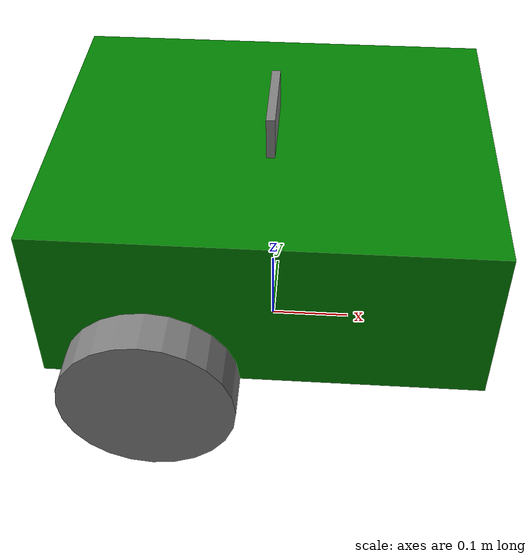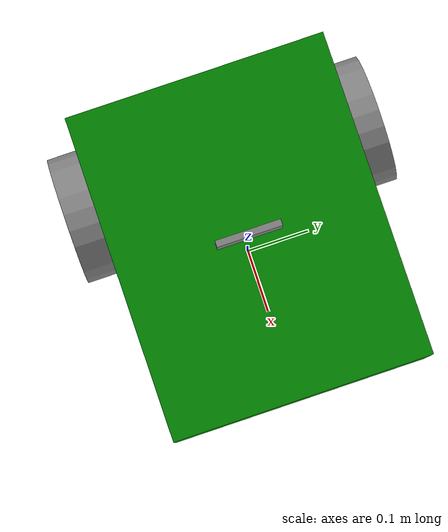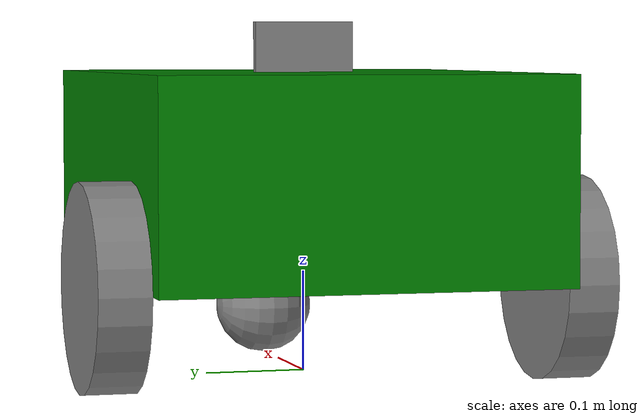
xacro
<?xml version="1.0"?>
<robot name="my_robot" xmlns:xacro="https://www.ros.org/wiki/xacro">

    <xacro:include filename="common_properties.xacro"/>
    <xacro:include filename="mobile_base.xacro"/>
    <xacro:include filename="mobile_base_gazebo.xacro"/>
    <xacro:include filename="camera.xacro"/>

</robot>

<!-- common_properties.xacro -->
<robot xmlns:xacro="https://www.ros.org/wiki/xacro">

    <material name="green">
        <color rgba="0 0.5 0 1"/>
    </material>

    <material name="grey">
        <color rgba="0.5 0.5 0.5 1"/>
    </material>

    <xacro:macro name="box_inertia" params="m x y z o_xyz o_rpy">
        <inertial>
            <mass value="${m}"/>
            <origin xyz="${o_xyz}" rpy="${o_rpy}"/>
            <inertia ixx="${(m/12.0)*(y*y+z*z)}" ixy="0" ixz="0"
                iyy="${(m/12.0)*(x*x+z*z)}" iyz="0"
                izz="${(m/12.0)*(y*y+x*x)}"/>
        </inertial>
    </xacro:macro>

    <xacro:macro name="cylinder_inertia" params="m r l o_xyz o_rpy">
        <inertial>
            <mass value="${m}"/>
            <origin xyz="${o_xyz}" rpy="${o_rpy}"/>
            <inertia ixx="${(m/12.0)*(3*r*r+l*l)}" ixy="0" ixz="0"
                iyy="${(m/12.0)*(3*r*r+l*l)}" iyz="0"
                izz="${(m/2.0)*(r*r)}"/>
        </inertial>
    </xacro:macro>

    <xacro:macro name="sphere_inertia" params="m r o_xyz o_rpy">
        <inertial>
            <mass value="${m}"/>
            <origin xyz="${o_xyz}" rpy="${o_rpy}"/>
            <inertia ixx="${(2.0/5.0)*m*(r*r)}" ixy="0" ixz="0"
                iyy="${(2.0/5.0)*m*(r*r)}" iyz="0"
                izz="${(2.0/5.0)*m*(r*r)}"/>
        </inertial>
    </xacro:macro>

</robot>

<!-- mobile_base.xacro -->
<robot xmlns:xacro="https://www.ros.org/wiki/xacro">
    <xacro:property name="base_length" value="0.5"/>
    <xacro:property name="base_width" value="0.4"/>
    <xacro:property name="base_height" value="0.2"/>
    <xacro:property name="wheel_radius" value="0.1"/>
    <xacro:property name="wheel_length" value="0.05"/>

    <xacro:macro name="wheel_link" params="prefix">
        <link name="${prefix}_wheel_link">
            <visual>
                <geometry>
                    <cylinder radius="${wheel_radius}" length="${wheel_length}"/>
                </geometry>
                <origin xyz="0 0 0" rpy="${pi/2.0} 0 0"/>
                <material name="grey"/>
            </visual>
            <collision>
                <geometry>
                    <cylinder radius="${wheel_radius}" length="${wheel_length}"/>

                </geometry>
                <origin xyz="0 0 0" rpy="${pi/2.0} 0 0"/>

            </collision>
            <xacro:cylinder_inertia m="1.0" r="${wheel_radius}" l="${wheel_length}"
                                o_xyz="0 0 0" o_rpy="${pi/2.0} 0 0"/>

        </link>

    </xacro:macro>

    <link name="base_footprint"/>

    <link name="base_link">
        <visual>
            <geometry>
                <box size="${base_length} ${base_width} ${base_height}"/>
            </geometry>
            <origin xyz="0 0 ${base_height/2.0}" rpy="0 0 0"/>
            <material name="green"/>
        </visual>
        <collision>
            <geometry>
                <box size="${base_length} ${base_width} ${base_height}"/>
            </geometry>
            <origin xyz="0 0 ${base_height/2.0}" rpy="0 0 0"/>
        </collision>
         <xacro:box_inertia m="5.0" x="${base_length}" y="${base_width}" z="${base_height}"
                                o_xyz="0 0 ${base_height/2.0}" o_rpy="0 0 0"/>
    </link>

    <xacro:wheel_link prefix="right"/>
    <xacro:wheel_link prefix="left"/>

    <link name="caster_wheel_link">
        <visual>
            <geometry>
                <sphere radius="${wheel_radius/2.0}"/>
            </geometry>
            <origin xyz="0 0 0" rpy="1.57 0 0"/>
            <material name="grey"/>
        </visual>
        <collision>
            <geometry>
                <sphere radius="${wheel_radius/2.0}"/>
            </geometry>
        </collision>
        <xacro:sphere_inertia m="5" r="${wheel_radius/2.0}"
                                o_xyz="0 0 0" o_rpy="0 0 0"/>
    </link>

    <joint name="base_right_wheel_joint" type="continuous">
        <parent link="base_link"/>
        <child link="right_wheel_link"/>
        <origin xyz="${-base_length/4.0} ${-(base_width + wheel_length)/2.0} 0" rpy="0 0 0"/>
        <axis xyz="0 1 0" />
    </joint>

    <joint name="base_left_wheel_joint" type="continuous">
        <parent link="base_link"/>
        <child link="left_wheel_link"/>
        <origin xyz="${-base_length/4.0} ${(base_width + wheel_length)/2.0} 0" rpy="0 0 0"/>
        <axis xyz="0 1 0" />
    </joint>

    <joint name="base_caster_wheel_joint" type="fixed">
        <parent link="base_link"/>
        <child link="caster_wheel_link"/>
        <origin xyz="${base_length/3.0} 0 ${-wheel_radius/2.0}" rpy="0 0 0"/>
    </joint>

    <joint name="base_joint" type="fixed">
        <parent link="base_footprint"/>
        <child link="base_link"/>
        <origin xyz="0 0 ${wheel_radius}" rpy="0 0 0"/>
    </joint>
</robot>

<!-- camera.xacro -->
<robot xmlns:xacro="https://www.ros.org/wiki/xacro">
    <xacro:property name="camera_length" value="0.01"/>
    <xacro:property name="camera_width" value="0.1"/>
    <xacro:property name="camera_height" value="0.05"/>

    <link name="camera_link">
        <visual>
            <geometry>
                <box size="${camera_length} ${camera_width} ${camera_height}"/>
            </geometry>
            <material name="grey"/>
        </visual>
        <collision>
            <geometry>
                <box size="${camera_length} ${camera_width} ${camera_height}"/>
            </geometry>
        </collision>
        <xacro:box_inertia m="0.1" x="${camera_length}" y="${camera_width}" z="${camera_height}"
                            o_xyz="0 0 0" o_rpy="0 0 0"/>
    </link>
    <joint name="base_camera_joint" type="fixed">
        <parent link="base_link"/>
        <child link="camera_link"/>
        <origin xyz="0 0 ${base_height+(camera_height/2.0)}" rpy="0 0 0"/>
    </joint>

    <gazebo reference="camera_link">
        <sensor name="lidar" type="gpu_lidar">
            <pose>0 0 0 0 0 0</pose>
            <topic>/scan</topic>
            <update_rate>10</update_rate>
            <ray>
                <scan>
                    <horizontal>
                        <samples>1440</samples>
                        <resolution>1</resolution>
                        <min_angle>-3.14</min_angle>
                        <max_angle>3.14</max_angle>
                    </horizontal>
                </scan>
                <range>
                    <min>0.05</min>
                    <max>40.0</max>
                    <resolution>0.01</resolution>
                </range>
            </ray>
            <always_on>1</always_on>
            <visualize>true</visualize>
        </sensor>
    </gazebo></robot>
